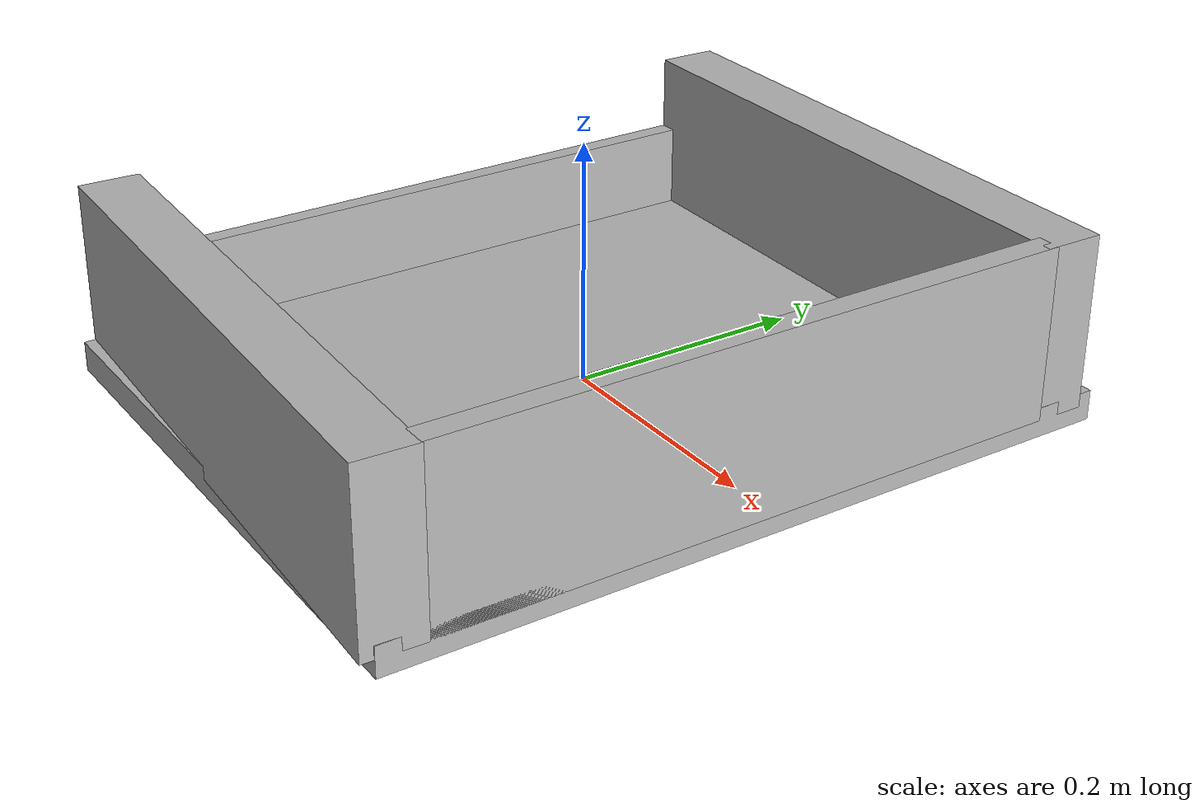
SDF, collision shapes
<?xml version='1.0'?>
<sdf version='1.6'>
  <model name='yellow_bin'>
    <link name='link'>
      <self_collide>0</self_collide>
      <enable_wind>0</enable_wind>
      <kinematic>0</kinematic>
      <pose frame=''>0 0 0 0 -0 0</pose>
      <visual name='visual'>
        <pose frame=''>0 0 0 0 -0 0.015</pose>
        <geometry>
          <mesh>
            <scale>1 2.1 1</scale>
            <uri>model://yellow_bin_ariac/meshes/yellow_bin.obj</uri>
          </mesh>
        </geometry>
        <material>
          <shader type='pixel'/>
        </material>
        <transparency>0</transparency>
        <cast_shadows>1</cast_shadows>
      </visual>
      <collision name='bin_underneath'>
        <laser_retro>0</laser_retro>
        <max_contacts>10</max_contacts>
        <pose frame=''>0 -0.007 0.001 0 -0 0</pose>
        <geometry>
          <box>
            <size>0.5 0.623 0.025</size>
          </box>
        </geometry>
        <surface>
          <friction>
            <ode>
              <mu>1</mu>
              <mu2>1</mu2>
              <fdir1>0 0 0</fdir1>
              <slip1>0</slip1>
              <slip2>0</slip2>
            </ode>
            <torsional>
              <coefficient>1</coefficient>
              <patch_radius>0</patch_radius>
              <surface_radius>0</surface_radius>
              <use_patch_radius>1</use_patch_radius>
              <ode>
                <slip>0</slip>
              </ode>
            </torsional>
          </friction>
          <bounce>
            <restitution_coefficient>0</restitution_coefficient>
            <threshold>1e+06</threshold>
          </bounce>
          <contact>
            <collide_without_contact>0</collide_without_contact>
            <collide_without_contact_bitmask>1</collide_without_contact_bitmask>
            <collide_bitmask>1</collide_bitmask>
            <ode>
              <soft_cfm>0</soft_cfm>
              <soft_erp>0.2</soft_erp>
              <kp>1e+13</kp>
              <kd>1</kd>
              <max_vel>0</max_vel>
              <min_depth>0.0001</min_depth>
            </ode>
            <bullet>
              <split_impulse>1</split_impulse>
              <split_impulse_penetration_threshold>-0.01</split_impulse_penetration_threshold>
              <soft_cfm>0</soft_cfm>
              <soft_erp>0.2</soft_erp>
              <kp>1e+13</kp>
              <kd>1</kd>
            </bullet>
          </contact>
        </surface>
      </collision>
      <collision name='bin_back'>
        <laser_retro>0</laser_retro>
        <max_contacts>10</max_contacts>
        <pose frame=''>0.24 -0.014 0.075 0 -0 0</pose>
        <geometry>
          <box>
            <size>0.02 0.532 0.145</size>
          </box>
        </geometry>
        <surface>
          <friction>
            <ode>
              <mu>1</mu>
              <mu2>1</mu2>
              <fdir1>0 0 0</fdir1>
              <slip1>0</slip1>
              <slip2>0</slip2>
            </ode>
            <torsional>
              <coefficient>1</coefficient>
              <patch_radius>0</patch_radius>
              <surface_radius>0</surface_radius>
              <use_patch_radius>1</use_patch_radius>
              <ode>
                <slip>0</slip>
              </ode>
            </torsional>
          </friction>
          <bounce>
            <restitution_coefficient>0</restitution_coefficient>
            <threshold>1e+06</threshold>
          </bounce>
          <contact>
            <collide_without_contact>0</collide_without_contact>
            <collide_without_contact_bitmask>1</collide_without_contact_bitmask>
            <collide_bitmask>1</collide_bitmask>
            <ode>
              <soft_cfm>0</soft_cfm>
              <soft_erp>0.2</soft_erp>
              <kp>1e+13</kp>
              <kd>1</kd>
              <max_vel>0</max_vel>
              <min_depth>0.001</min_depth>
            </ode>
            <bullet>
              <split_impulse>1</split_impulse>
              <split_impulse_penetration_threshold>-0.01</split_impulse_penetration_threshold>
              <soft_cfm>0</soft_cfm>
              <soft_erp>0.2</soft_erp>
              <kp>1e+13</kp>
              <kd>1</kd>
            </bullet>
          </contact>
        </surface>
      </collision>
      <collision name='bin_front_wall'>
        <laser_retro>0</laser_retro>
        <max_contacts>10</max_contacts>
        <pose frame=''>-0.24 -0.007 0.042 0 -0 0.01</pose>
        <geometry>
          <box>
            <size>0.015 0.525 0.084</size>
          </box>
        </geometry>
        <surface>
          <friction>
            <ode>
              <mu>1</mu>
              <mu2>1</mu2>
              <fdir1>0 0 0</fdir1>
              <slip1>0</slip1>
              <slip2>0</slip2>
            </ode>
            <torsional>
              <coefficient>1</coefficient>
              <patch_radius>0</patch_radius>
              <surface_radius>0</surface_radius>
              <use_patch_radius>1</use_patch_radius>
              <ode>
                <slip>0</slip>
              </ode>
            </torsional>
          </friction>
          <bounce>
            <restitution_coefficient>0</restitution_coefficient>
            <threshold>1e+06</threshold>
          </bounce>
          <contact>
            <collide_without_contact>0</collide_without_contact>
            <collide_without_contact_bitmask>1</collide_without_contact_bitmask>
            <collide_bitmask>1</collide_bitmask>
            <ode>
              <soft_cfm>0</soft_cfm>
              <soft_erp>0.2</soft_erp>
              <kp>1e+13</kp>
              <kd>1</kd>
              <max_vel>0</max_vel>
              <min_depth>0.001</min_depth>
            </ode>
            <bullet>
              <split_impulse>1</split_impulse>
              <split_impulse_penetration_threshold>-0.01</split_impulse_penetration_threshold>
              <soft_cfm>0</soft_cfm>
              <soft_erp>0.2</soft_erp>
              <kp>1e+13</kp>
              <kd>1</kd>
            </bullet>
          </contact>
        </surface>
      </collision>
      <collision name='bin_left_wall'>
        <laser_retro>0</laser_retro>
        <max_contacts>10</max_contacts>
        <pose frame=''>0 0.273 0.075 0 0 -0.02</pose>
        <geometry>
          <box>
            <size>0.5 0.05 0.145</size>
          </box>
        </geometry>
        <surface>
          <friction>
            <ode>
              <mu>1</mu>
              <mu2>1</mu2>
              <fdir1>0 0 0</fdir1>
              <slip1>0</slip1>
              <slip2>0</slip2>
            </ode>
            <torsional>
              <coefficient>1</coefficient>
              <patch_radius>0</patch_radius>
              <surface_radius>0</surface_radius>
              <use_patch_radius>1</use_patch_radius>
              <ode>
                <slip>0</slip>
              </ode>
            </torsional>
          </friction>
          <bounce>
            <restitution_coefficient>0</restitution_coefficient>
            <threshold>1e+06</threshold>
          </bounce>
          <contact>
            <collide_without_contact>0</collide_without_contact>
            <collide_without_contact_bitmask>1</collide_without_contact_bitmask>
            <collide_bitmask>1</collide_bitmask>
            <ode>
              <soft_cfm>0</soft_cfm>
              <soft_erp>0.2</soft_erp>
              <kp>1e+13</kp>
              <kd>1</kd>
              <max_vel>0</max_vel>
              <min_depth>0.001</min_depth>
            </ode>
            <bullet>
              <split_impulse>1</split_impulse>
              <split_impulse_penetration_threshold>-0.01</split_impulse_penetration_threshold>
              <soft_cfm>0</soft_cfm>
              <soft_erp>0.2</soft_erp>
              <kp>1e+13</kp>
              <kd>1</kd>
            </bullet>
          </contact>
        </surface>
      </collision>
      <collision name='bin_right_wall'>
        <laser_retro>0</laser_retro>
        <max_contacts>10</max_contacts>
        <pose frame=''>0 -0.294 0.075 0 0 -0.04</pose>
        <geometry>
          <box>
            <size>0.5 0.05 0.145</size>
          </box>
        </geometry>
        <surface>
          <friction>
            <ode>
              <mu>1</mu>
              <mu2>1</mu2>
              <fdir1>0 0 0</fdir1>
              <slip1>0</slip1>
              <slip2>0</slip2>
            </ode>
            <torsional>
              <coefficient>1</coefficient>
              <patch_radius>0</patch_radius>
              <surface_radius>0</surface_radius>
              <use_patch_radius>1</use_patch_radius>
              <ode>
                <slip>0</slip>
              </ode>
            </torsional>
          </friction>
          <bounce>
            <restitution_coefficient>0</restitution_coefficient>
            <threshold>1e+06</threshold>
          </bounce>
          <contact>
            <collide_without_contact>0</collide_without_contact>
            <collide_without_contact_bitmask>1</collide_without_contact_bitmask>
            <collide_bitmask>1</collide_bitmask>
            <ode>
              <soft_cfm>0</soft_cfm>
              <soft_erp>0.2</soft_erp>
              <kp>1e+13</kp>
              <kd>1</kd>
              <max_vel>0</max_vel>
              <min_depth>0.001</min_depth>
            </ode>
            <bullet>
              <split_impulse>1</split_impulse>
              <split_impulse_penetration_threshold>-0.01</split_impulse_penetration_threshold>
              <soft_cfm>0</soft_cfm>
              <soft_erp>0.2</soft_erp>
              <kp>1e+13</kp>
              <kd>1</kd>
            </bullet>
          </contact>
        </surface>
      </collision>
    </link>
    <static>1</static>
    <allow_auto_disable>1</allow_auto_disable>
  </model>
</sdf>
